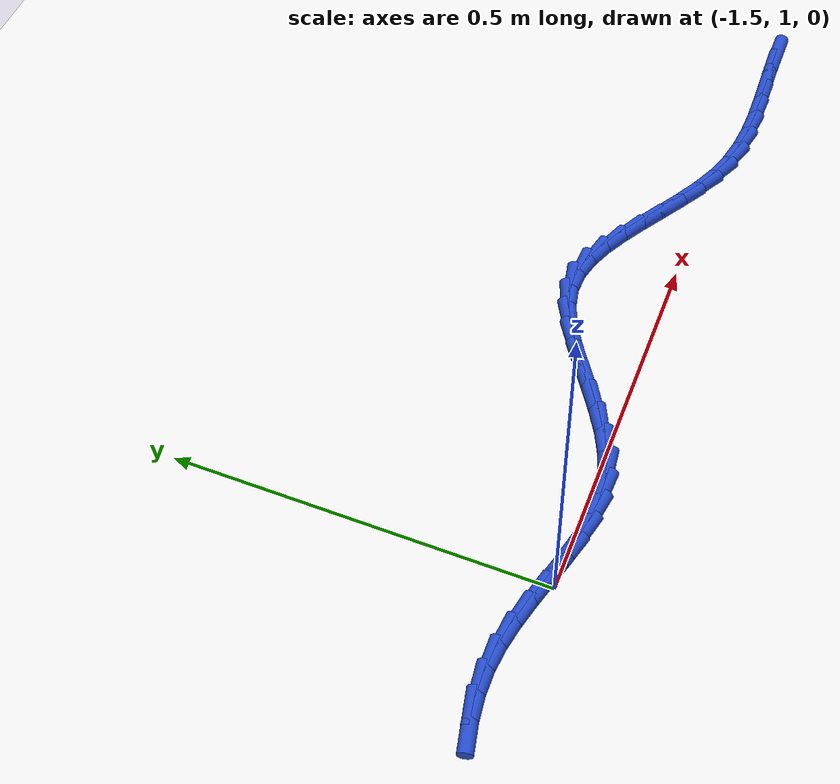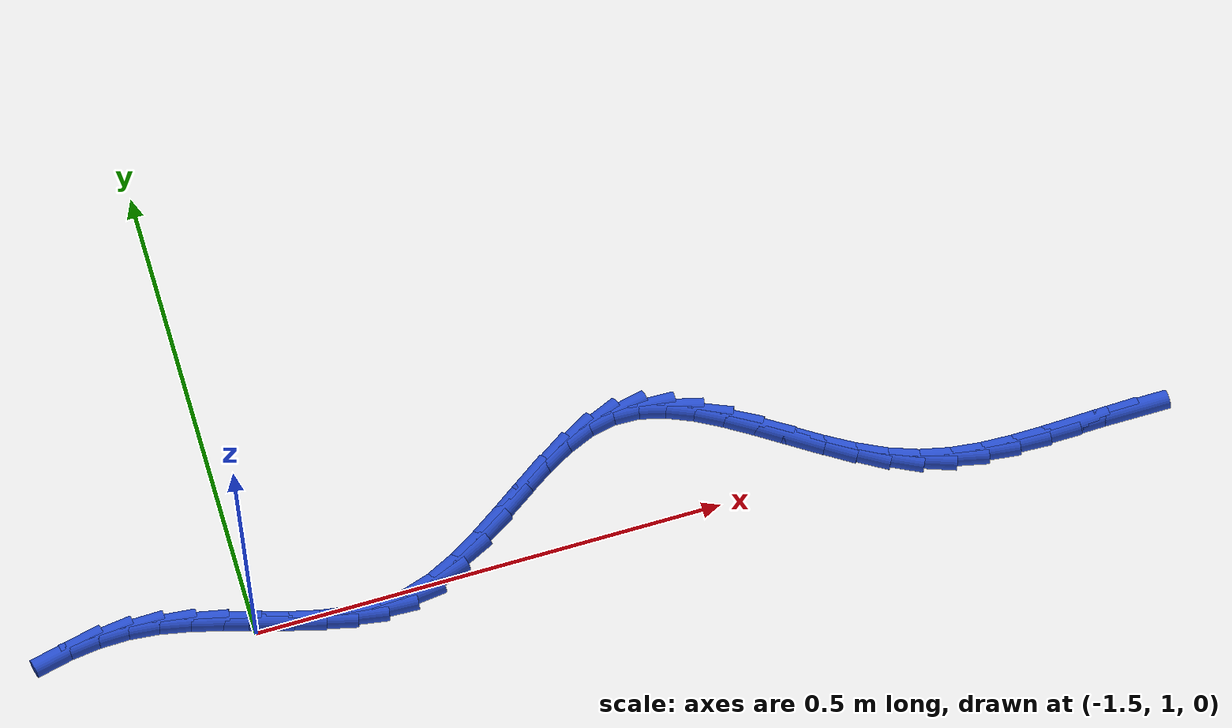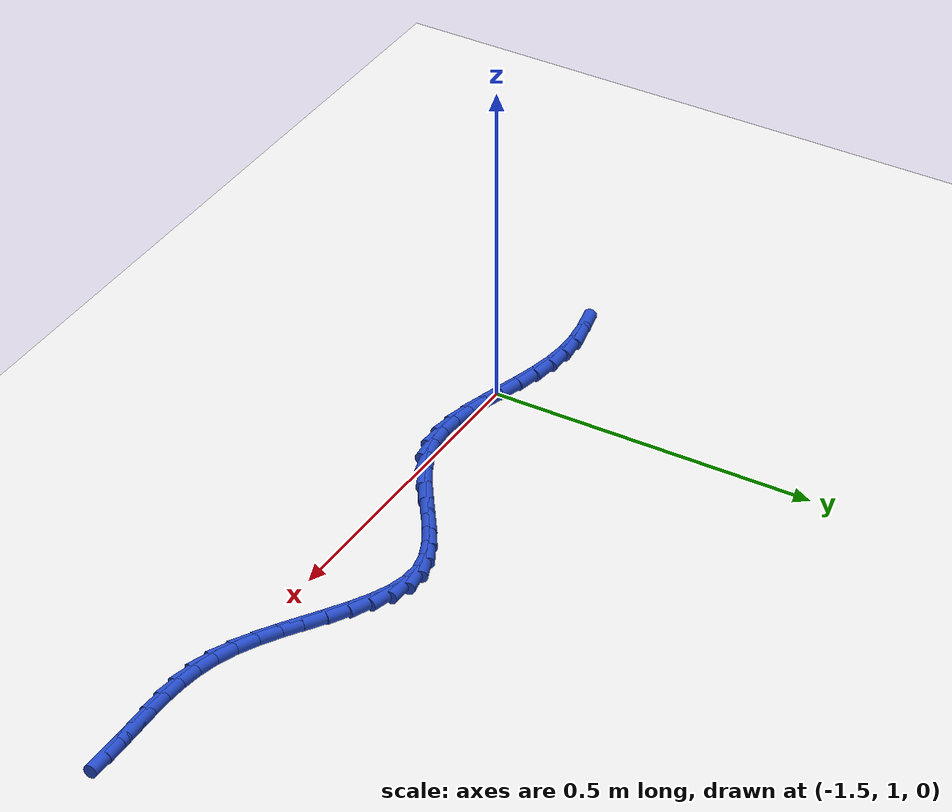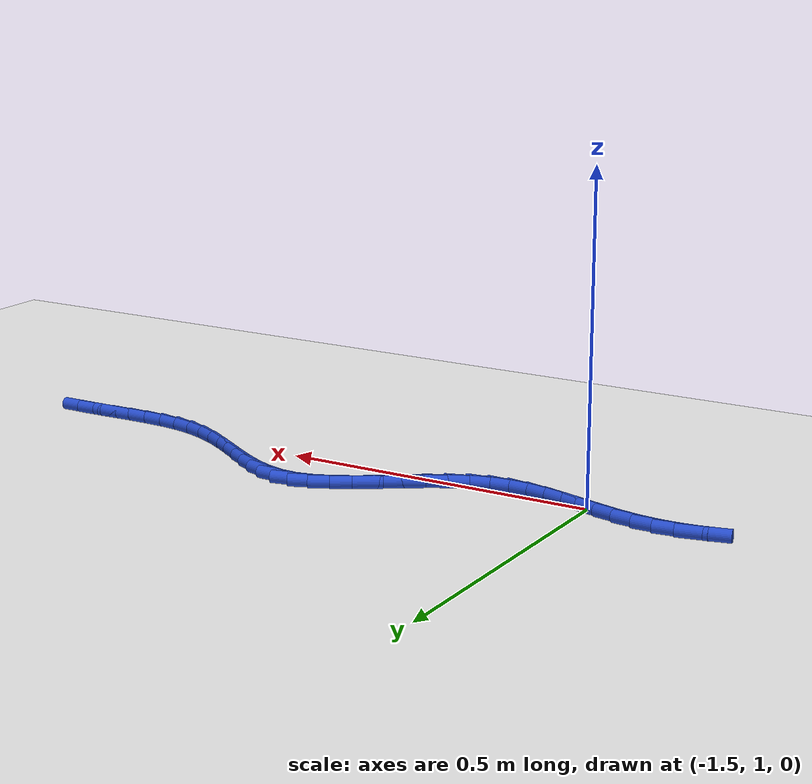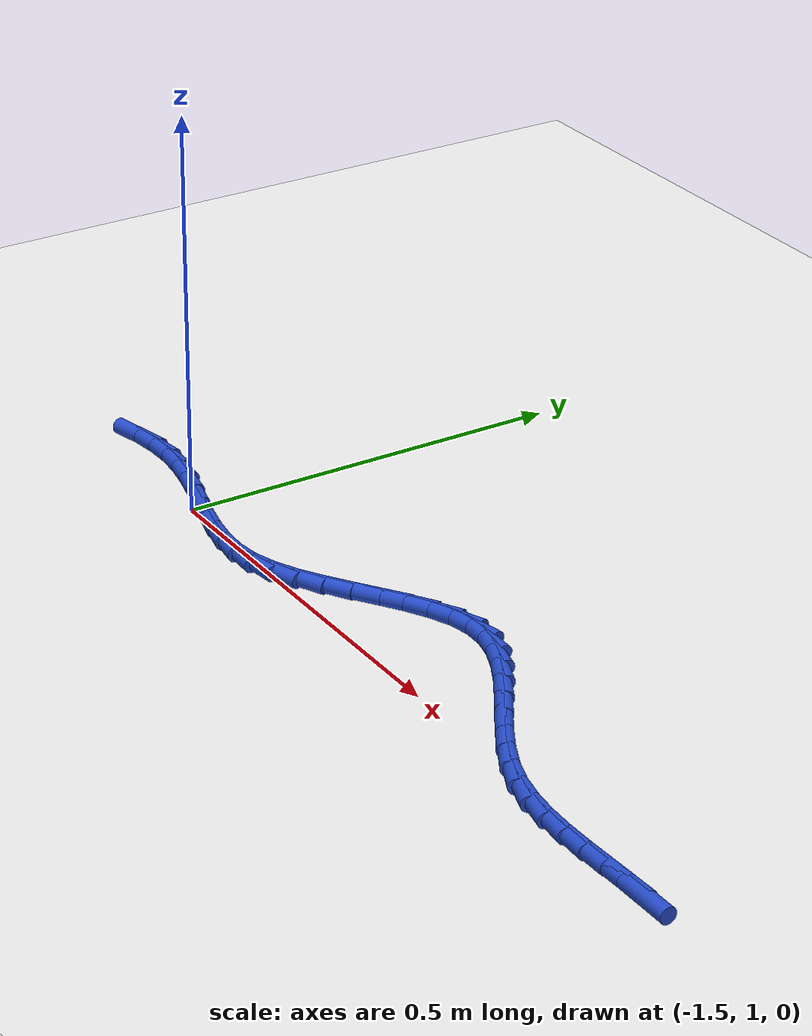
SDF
<sdf version="1.6">
 <world name="default">
  <model name="ground_plane">
   <static>1</static>
   <link name="link">
    <collision name="collision">
     <geometry><plane><normal>0 0 1</normal><size>100 100</size></plane></geometry>
     <surface><friction><ode><mu>100</mu><mu2>50</mu2></ode></friction></surface>
    </collision>
    <visual name="visual">
     <cast_shadows>0</cast_shadows>
     <geometry><plane><normal>0 0 1</normal><size>100 100</size></plane></geometry>
     <material>
      <script><uri>file://media/materials/scripts/gazebo.material</uri><name>Gazebo/WhiteGlow</name></script>
     </material>
    </visual>
   </link>
  </model>
  <model name="line">
   <link name="link_37">
    <pose>-0.5595022035116406 0.9782523404245301 0.01 0 1.57 0.0020202784681673824</pose>
    <collision name="collision">
     <geometry><cylinder><radius>0.01</radius><length>0.08</length></cylinder></geometry>
    </collision>
    <visual name="visual">
     <material>
      <script><name>Gazebo/Blue</name><uri>file://media/materials/scripts/gazebo.material</uri></script>
     </material>
     <geometry><cylinder><radius>0.01</radius><length>0.08</length></cylinder></geometry>
    </visual>
   </link>
   <link name="link_38">
    <pose>-0.5915260934414077 0.9781876431612169 0.01 0 1.57 0.030835594973835437</pose>
    <collision name="collision">
     <geometry><cylinder><radius>0.01</radius><length>0.08</length></cylinder></geometry>
    </collision>
    <visual name="visual">
     <material>
      <script><name>Gazebo/Blue</name><uri>file://media/materials/scripts/gazebo.material</uri></script>
     </material>
     <geometry><cylinder><radius>0.01</radius><length>0.08</length></cylinder></geometry>
    </visual>
   </link>
   <link name="link_39">
    <pose>-0.6241139928782442 0.9771824572846628 0.01 0 1.57 0.03305758115891684</pose>
    <collision name="collision">
     <geometry><cylinder><radius>0.01</radius><length>0.08</length></cylinder></geometry>
    </collision>
    <visual name="visual">
     <material>
      <script><name>Gazebo/Blue</name><uri>file://media/materials/scripts/gazebo.material</uri></script>
     </material>
     <geometry><cylinder><radius>0.01</radius><length>0.08</length></cylinder></geometry>
    </visual>
   </link>
   <link name="link_40">
    <pose>-0.6570572919899436 0.9760930346300285 0.01 0 1.57 0.009591931395367972</pose>
    <collision name="collision">
     <geometry><cylinder><radius>0.01</radius><length>0.08</length></cylinder></geometry>
    </collision>
    <visual name="visual">
     <material>
      <script><name>Gazebo/Blue</name><uri>file://media/materials/scripts/gazebo.material</uri></script>
     </material>
     <geometry><cylinder><radius>0.01</radius><length>0.08</length></cylinder></geometry>
    </visual>
   </link>
   <link name="link_41">
    <pose>-0.6901473809442994 0.9757756270324743 0.01 0 1.57 -0.03966818998932322</pose>
    <collision name="collision">
     <geometry><cylinder><radius>0.01</radius><length>0.08</length></cylinder></geometry>
    </collision>
    <visual name="visual">
     <material>
      <script><name>Gazebo/Blue</name><uri>file://media/materials/scripts/gazebo.material</uri></script>
     </material>
     <geometry><cylinder><radius>0.01</radius><length>0.08</length></cylinder></geometry>
    </visual>
   </link>
   <link name="link_42">
    <pose>-0.7231756499091058 0.9770864863271609 0.01 0 1.57 -0.11534736876464292</pose>
    <collision name="collision">
     <geometry><cylinder><radius>0.01</radius><length>0.08</length></cylinder></geometry>
    </collision>
    <visual name="visual">
     <material>
      <script><name>Gazebo/Blue</name><uri>file://media/materials/scripts/gazebo.material</uri></script>
     </material>
     <geometry><cylinder><radius>0.01</radius><length>0.08</length></cylinder></geometry>
    </visual>
   </link>
   <link name="link_43">
    <pose>-0.755933489052156 0.9808818643492483 0.01 0 1.57 -0.21757878261661803</pose>
    <collision name="collision">
     <geometry><cylinder><radius>0.01</radius><length>0.08</length></cylinder></geometry>
    </collision>
    <visual name="visual">
     <material>
      <script><name>Gazebo/Blue</name><uri>file://media/materials/scripts/gazebo.material</uri></script>
     </material>
     <geometry><cylinder><radius>0.01</radius><length>0.08</length></cylinder></geometry>
    </visual>
   </link>
   <link name="link_44">
    <pose>-0.7882122885412435 0.9880180129338967 0.01 0 1.57 -0.3421504435039345</pose>
    <collision name="collision">
     <geometry><cylinder><radius>0.01</radius><length>0.08</length></cylinder></geometry>
    </collision>
    <visual name="visual">
     <material>
      <script><name>Gazebo/Blue</name><uri>file://media/materials/scripts/gazebo.material</uri></script>
     </material>
     <geometry><cylinder><radius>0.01</radius><length>0.08</length></cylinder></geometry>
    </visual>
   </link>
   <link name="link_45">
    <pose>-0.8198141549782639 0.9992732784349818 0.01 0 1.57 -0.4526314392853402</pose>
    <collision name="collision">
     <geometry><cylinder><radius>0.01</radius><length>0.08</length></cylinder></geometry>
    </collision>
    <visual name="visual">
     <material>
      <script><name>Gazebo/Blue</name><uri>file://media/materials/scripts/gazebo.material</uri></script>
     </material>
     <geometry><cylinder><radius>0.01</radius><length>0.08</length></cylinder></geometry>
    </visual>
   </link>
   <link name="link_46">
    <pose>-0.8506972060312612 1.0142918503517326 0.01 0 1.57 -0.5263132004046575</pose>
    <collision name="collision">
     <geometry><cylinder><radius>0.01</radius><length>0.08</length></cylinder></geometry>
    </collision>
    <visual name="visual">
     <material>
      <script><name>Gazebo/Blue</name><uri>file://media/materials/scripts/gazebo.material</uri></script>
     </material>
     <geometry><cylinder><radius>0.01</radius><length>0.08</length></cylinder></geometry>
    </visual>
   </link>
   <link name="link_47">
    <pose>-0.8809374760276731 1.031860697020608 0.01 0 1.57 -0.5667276058517842</pose>
    <collision name="collision">
     <geometry><cylinder><radius>0.01</radius><length>0.08</length></cylinder></geometry>
    </collision>
    <visual name="visual">
     <material>
      <script><name>Gazebo/Blue</name><uri>file://media/materials/scripts/gazebo.material</uri></script>
     </material>
     <geometry><cylinder><radius>0.01</radius><length>0.08</length></cylinder></geometry>
    </visual>
   </link>
   <link name="link_48">
    <pose>-0.910613909178522 1.050745632737551 0.01 0 1.57 -0.5761906763435826</pose>
    <collision name="collision">
     <geometry><cylinder><radius>0.01</radius><length>0.08</length></cylinder></geometry>
    </collision>
    <visual name="visual">
     <material>
      <script><name>Gazebo/Blue</name><uri>file://media/materials/scripts/gazebo.material</uri></script>
     </material>
     <geometry><cylinder><radius>0.01</radius><length>0.08</length></cylinder></geometry>
    </visual>
   </link>
   <link name="link_49">
    <pose>-0.9398054496948308 1.0697124717985054 0.01 0 1.57 -0.5541795112804764</pose>
    <collision name="collision">
     <geometry><cylinder><radius>0.01</radius><length>0.08</length></cylinder></geometry>
    </collision>
    <visual name="visual">
     <material>
      <script><name>Gazebo/Blue</name><uri>file://media/materials/scripts/gazebo.material</uri></script>
     </material>
     <geometry><cylinder><radius>0.01</radius><length>0.08</length></cylinder></geometry>
    </visual>
   </link>
   <link name="link_50">
    <pose>-0.9685910417876222 1.0875270284994147 0.01 0 1.57 -0.4967764145526951</pose>
    <collision name="collision">
     <geometry><cylinder><radius>0.01</radius><length>0.08</length></cylinder></geometry>
    </collision>
    <visual name="visual">
     <material>
      <script><name>Gazebo/Blue</name><uri>file://media/materials/scripts/gazebo.material</uri></script>
     </material>
     <geometry><cylinder><radius>0.01</radius><length>0.08</length></cylinder></geometry>
    </visual>
   </link>
   <link name="link_51">
    <pose>-0.9970496296679189 1.1029551171362217 0.01 0 1.57 -0.3963923191846263</pose>
    <collision name="collision">
     <geometry><cylinder><radius>0.01</radius><length>0.08</length></cylinder></geometry>
    </collision>
    <visual name="visual">
     <material>
      <script><name>Gazebo/Blue</name><uri>file://media/materials/scripts/gazebo.material</uri></script>
     </material>
     <geometry><cylinder><radius>0.01</radius><length>0.08</length></cylinder></geometry>
    </visual>
   </link>
   <link name="link_52">
    <pose>-1.0252601575467433 1.1147625520048705 0.01 0 1.57 -0.24303915994346564</pose>
    <collision name="collision">
     <geometry><cylinder><radius>0.01</radius><length>0.08</length></cylinder></geometry>
    </collision>
    <visual name="visual">
     <material>
      <script><name>Gazebo/Blue</name><uri>file://media/materials/scripts/gazebo.material</uri></script>
     </material>
     <geometry><cylinder><radius>0.01</radius><length>0.08</length></cylinder></geometry>
    </visual>
   </link>
   <link name="link_53">
    <pose>-1.0533015696351185 1.121715147401304 0.01 0 1.57 -0.03088749037135459</pose>
    <collision name="collision">
     <geometry><cylinder><radius>0.01</radius><length>0.08</length></cylinder></geometry>
    </collision>
    <visual name="visual">
     <material>
      <script><name>Gazebo/Blue</name><uri>file://media/materials/scripts/gazebo.material</uri></script>
     </material>
     <geometry><cylinder><radius>0.01</radius><length>0.08</length></cylinder></geometry>
    </visual>
   </link>
   <link name="link_54">
    <pose>-1.0812528098690035 1.1225787657236606 0.01 0 1.57 0.2093572465290852</pose>
    <collision name="collision">
     <geometry><cylinder><radius>0.01</radius><length>0.08</length></cylinder></geometry>
    </collision>
    <visual name="visual">
     <material>
      <script><name>Gazebo/Blue</name><uri>file://media/materials/scripts/gazebo.material</uri></script>
     </material>
     <geometry><cylinder><radius>0.01</radius><length>0.08</length></cylinder></geometry>
    </visual>
   </link>
   <link name="link_55">
    <pose>-1.1091898274913934 1.1166429713087278 0.01 0 1.57 0.39373224120965816</pose>
    <collision name="collision">
     <geometry><cylinder><radius>0.01</radius><length>0.08</length></cylinder></geometry>
    </collision>
    <visual name="visual">
     <material>
      <script><name>Gazebo/Blue</name><uri>file://media/materials/scripts/gazebo.material</uri></script>
     </material>
     <geometry><cylinder><radius>0.01</radius><length>0.08</length></cylinder></geometry>
    </visual>
   </link>
   <link name="link_56">
    <pose>-1.1371781724248873 1.1050159270338085 0.01 0 1.57 0.51259802211965</pose>
    <collision name="collision">
     <geometry><cylinder><radius>0.01</radius><length>0.08</length></cylinder></geometry>
    </collision>
    <visual name="visual">
     <material>
      <script><name>Gazebo/Blue</name><uri>file://media/materials/scripts/gazebo.material</uri></script>
     </material>
     <geometry><cylinder><radius>0.01</radius><length>0.08</length></cylinder></geometry>
    </visual>
   </link>
   <link name="link_57">
    <pose>-1.1652811387390374 1.0892002918491626 0.01 0 1.57 0.5793274111684797</pose>
    <collision name="collision">
     <geometry><cylinder><radius>0.01</radius><length>0.08</length></cylinder></geometry>
    </collision>
    <visual name="visual">
     <material>
      <script><name>Gazebo/Blue</name><uri>file://media/materials/scripts/gazebo.material</uri></script>
     </material>
     <geometry><cylinder><radius>0.01</radius><length>0.08</length></cylinder></geometry>
    </visual>
   </link>
   <link name="link_58">
    <pose>-1.1935620205033939 1.0706987247050515 0.01 0 1.57 0.6040921626146539</pose>
    <collision name="collision">
     <geometry><cylinder><radius>0.01</radius><length>0.08</length></cylinder></geometry>
    </collision>
    <visual name="visual">
     <material>
      <script><name>Gazebo/Blue</name><uri>file://media/materials/scripts/gazebo.material</uri></script>
     </material>
     <geometry><cylinder><radius>0.01</radius><length>0.08</length></cylinder></geometry>
    </visual>
   </link>
   <link name="link_59">
    <pose>-1.22208411178751 1.0510138845517356 0.01 0 1.57 0.591542006042264</pose>
    <collision name="collision">
     <geometry><cylinder><radius>0.01</radius><length>0.08</length></cylinder></geometry>
    </collision>
    <visual name="visual">
     <material>
      <script><name>Gazebo/Blue</name><uri>file://media/materials/scripts/gazebo.material</uri></script>
     </material>
     <geometry><cylinder><radius>0.01</radius><length>0.08</length></cylinder></geometry>
    </visual>
   </link>
   <link name="link_60">
    <pose>-1.2509107066609366 1.0316484303394766 0.01 0 1.57 0.5410935562170069</pose>
    <collision name="collision">
     <geometry><cylinder><radius>0.01</radius><length>0.08</length></cylinder></geometry>
    </collision>
    <visual name="visual">
     <material>
      <script><name>Gazebo/Blue</name><uri>file://media/materials/scripts/gazebo.material</uri></script>
     </material>
     <geometry><cylinder><radius>0.01</radius><length>0.08</length></cylinder></geometry>
    </visual>
   </link>
   <link name="link_61">
    <pose>-1.2801050991932266 1.0141050210185352 0.01 0 1.57 0.4474780836240453</pose>
    <collision name="collision">
     <geometry><cylinder><radius>0.01</radius><length>0.08</length></cylinder></geometry>
    </collision>
    <visual name="visual">
     <material>
      <script><name>Gazebo/Blue</name><uri>file://media/materials/scripts/gazebo.material</uri></script>
     </material>
     <geometry><cylinder><radius>0.01</radius><length>0.08</length></cylinder></geometry>
    </visual>
   </link>
   <link name="link_62">
    <pose>-1.3097305834539301 0.999886315539172 0.01 0 1.57 0.3022547152007498</pose>
    <collision name="collision">
     <geometry><cylinder><radius>0.01</radius><length>0.08</length></cylinder></geometry>
    </collision>
    <visual name="visual">
     <material>
      <script><name>Gazebo/Blue</name><uri>file://media/materials/scripts/gazebo.material</uri></script>
     </material>
     <geometry><cylinder><radius>0.01</radius><length>0.08</length></cylinder></geometry>
    </visual>
   </link>
   <link name="link_63">
    <pose>-1.3398504391144583 0.9904946901964533 0.01 0 1.57 0.11792265164271877</pose>
    <collision name="collision">
     <geometry><cylinder><radius>0.01</radius><length>0.08</length></cylinder></geometry>
    </collision>
    <visual name="visual">
     <material>
      <script><name>Gazebo/Blue</name><uri>file://media/materials/scripts/gazebo.material</uri></script>
     </material>
     <geometry><cylinder><radius>0.01</radius><length>0.08</length></cylinder></geometry>
    </visual>
   </link>
   <link name="link_64">
    <pose>-1.3704989701059427 0.9868636879240502 0.01 0 1.57 -0.041806255450858934</pose>
    <collision name="collision">
     <geometry><cylinder><radius>0.01</radius><length>0.08</length></cylinder></geometry>
    </collision>
    <visual name="visual">
     <material>
      <script><name>Gazebo/Blue</name><uri>file://media/materials/scripts/gazebo.material</uri></script>
     </material>
     <geometry><cylinder><radius>0.01</radius><length>0.08</length></cylinder></geometry>
    </visual>
   </link>
   <link name="link_65">
    <pose>-1.401620760689415 0.9881655319779445 0.01 0 1.57 -0.15938130991238214</pose>
    <collision name="collision">
     <geometry><cylinder><radius>0.01</radius><length>0.08</length></cylinder></geometry>
    </collision>
    <visual name="visual">
     <material>
      <script><name>Gazebo/Blue</name><uri>file://media/materials/scripts/gazebo.material</uri></script>
     </material>
     <geometry><cylinder><radius>0.01</radius><length>0.08</length></cylinder></geometry>
    </visual>
   </link>
   <link name="link_66">
    <pose>-1.4331430826894918 0.9932325788391437 0.01 0 1.57 -0.23615573508660329</pose>
    <collision name="collision">
     <geometry><cylinder><radius>0.01</radius><length>0.08</length></cylinder></geometry>
    </collision>
    <visual name="visual">
     <material>
      <script><name>Gazebo/Blue</name><uri>file://media/materials/scripts/gazebo.material</uri></script>
     </material>
     <geometry><cylinder><radius>0.01</radius><length>0.08</length></cylinder></geometry>
    </visual>
   </link>
   <link name="link_67">
    <pose>-1.4649932079307877 1.0008971849886539 0.01 0 1.57 -0.27604075094024194</pose>
    <collision name="collision">
     <geometry><cylinder><radius>0.01</radius><length>0.08</length></cylinder></geometry>
    </collision>
    <visual name="visual">
     <material>
      <script><name>Gazebo/Blue</name><uri>file://media/materials/scripts/gazebo.material</uri></script>
     </material>
     <geometry><cylinder><radius>0.01</radius><length>0.08</length></cylinder></geometry>
    </visual>
   </link>
   <link name="link_68">
    <pose>-1.497098408237919 1.0099917069074826 0.01 0 1.57 -0.2820690126569413</pose>
    <collision name="collision">
     <geometry><cylinder><radius>0.01</radius><length>0.08</length></cylinder></geometry>
    </collision>
    <visual name="visual">
     <material>
      <script><name>Gazebo/Blue</name><uri>file://media/materials/scripts/gazebo.material</uri></script>
     </material>
     <geometry><cylinder><radius>0.01</radius><length>0.08</length></cylinder></geometry>
    </visual>
   </link>
   <link name="link_69">
    <pose>-1.5293859554355 1.019348501076636 0.01 0 1.57 -0.25518205291023527</pose>
    <collision name="collision">
     <geometry><cylinder><radius>0.01</radius><length>0.08</length></cylinder></geometry>
    </collision>
    <visual name="visual">
     <material>
      <script><name>Gazebo/Blue</name><uri>file://media/materials/scripts/gazebo.material</uri></script>
     </material>
     <geometry><cylinder><radius>0.01</radius><length>0.08</length></cylinder></geometry>
    </visual>
   </link>
   <link name="link_70">
    <pose>-1.5617831213481475 1.0277999239771214 0.01 0 1.57 -0.19417978867634483</pose>
    <collision name="collision">
     <geometry><cylinder><radius>0.01</radius><length>0.08</length></cylinder></geometry>
    </collision>
    <visual name="visual">
     <material>
      <script><name>Gazebo/Blue</name><uri>file://media/materials/scripts/gazebo.material</uri></script>
     </material>
     <geometry><cylinder><radius>0.01</radius><length>0.08</length></cylinder></geometry>
    </visual>
   </link>
   <link name="link_71">
    <pose>-1.5942171778004763 1.0341783320899458 0.01 0 1.57 -0.0970384240240674</pose>
    <collision name="collision">
     <geometry><cylinder><radius>0.01</radius><length>0.08</length></cylinder></geometry>
    </collision>
    <visual name="visual">
     <material>
      <script><name>Gazebo/Blue</name><uri>file://media/materials/scripts/gazebo.material</uri></script>
     </material>
     <geometry><cylinder><radius>0.01</radius><length>0.08</length></cylinder></geometry>
    </visual>
   </link>
   <link name="link_72">
    <pose>-1.6266150696507446 1.0373320777119834 0.01 0 1.57 0.018456018644051532</pose>
    <collision name="collision">
     <geometry><cylinder><radius>0.01</radius><length>0.08</length></cylinder></geometry>
    </collision>
    <visual name="visual">
     <material>
      <script><name>Gazebo/Blue</name><uri>file://media/materials/scripts/gazebo.material</uri></script>
     </material>
     <geometry><cylinder><radius>0.01</radius><length>0.08</length></cylinder></geometry>
    </visual>
   </link>
   <link name="link_73">
    <pose>-1.658890929232659 1.036736326201706 0.01 0 1.57 0.12578425098897594</pose>
    <collision name="collision">
     <geometry><cylinder><radius>0.01</radius><length>0.08</length></cylinder></geometry>
    </collision>
    <visual name="visual">
     <material>
      <script><name>Gazebo/Blue</name><uri>file://media/materials/scripts/gazebo.material</uri></script>
     </material>
     <geometry><cylinder><radius>0.01</radius><length>0.08</length></cylinder></geometry>
    </visual>
   </link>
   <link name="link_74">
    <pose>-1.6909421858778233 1.0326833855378892 0.01 0 1.57 0.2220720010524591</pose>
    <collision name="collision">
     <geometry><cylinder><radius>0.01</radius><length>0.08</length></cylinder></geometry>
    </collision>
    <visual name="visual">
     <material>
      <script><name>Gazebo/Blue</name><uri>file://media/materials/scripts/gazebo.material</uri></script>
     </material>
     <geometry><cylinder><radius>0.01</radius><length>0.08</length></cylinder></geometry>
    </visual>
   </link>
  </model>
 </world>
</sdf>
